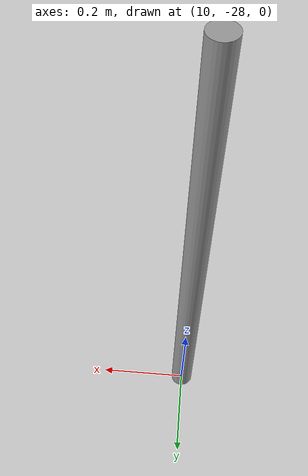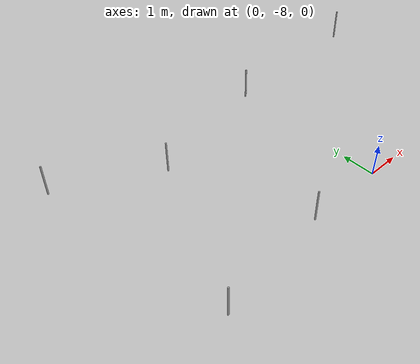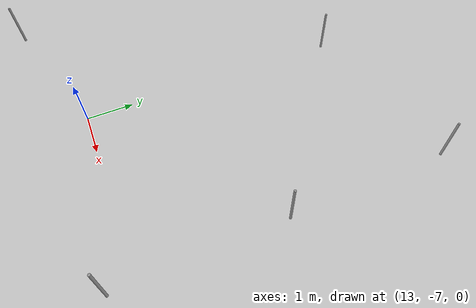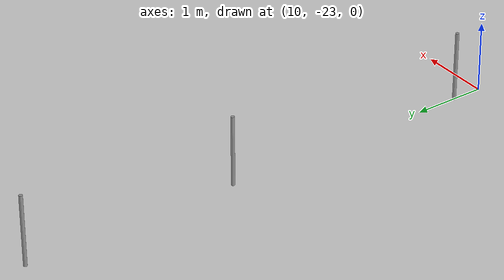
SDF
<sdf version="1.4">
 <world name="default">
  <light name="sun" type="directional">
   <pose>0 0 10 0 -0 0</pose>
   <diffuse>0.8 0.8 0.8 1</diffuse>
   <specular>0.2 0.2 0.2 1</specular>
   <attenuation>
    <range>1000</range>
    <constant>0.9</constant>
    <linear>0.01</linear>
    <quadratic>0.001</quadratic>
   </attenuation>
   <direction>-0.5 0.1 -0.9</direction>
  </light>
  <model name="ground_plane">
   <static>1</static>
   <link name="link">
    <collision name="collision">
     <geometry><plane><normal>0 0 1</normal><size>100 100</size></plane></geometry>
     <surface><friction><ode><mu>100</mu><mu2>50</mu2></ode></friction></surface>
    </collision>
    <visual name="visual">
     <cast_shadows>0</cast_shadows>
     <geometry><plane><normal>0 0 1</normal><size>100 100</size></plane></geometry>
     <material>
      <script><uri>file://media/materials/scripts/gazebo.material</uri><name>Gazebo/Grey</name></script>
     </material>
    </visual>
    <velocity_decay><linear>0</linear><angular>0</angular></velocity_decay>
   </link>
  </model>
  <physics type="ode">
   <max_step_size>0.001</max_step_size>
   <real_time_factor>1</real_time_factor>
   <real_time_update_rate>1000</real_time_update_rate>
   <gravity>0 0 -9.8</gravity>
  </physics>
  <scene><ambient>0.4 0.4 0.4 1</ambient><background>0.7 0.7 0.7 1</background><shadows>1</shadows></scene>
  <spherical_coordinates>
   <surface_model>EARTH_WGS84</surface_model>
   <latitude_deg>0</latitude_deg>
   <longitude_deg>0</longitude_deg>
   <elevation>0</elevation>
   <heading_deg>0</heading_deg>
  </spherical_coordinates>
  <model name="unit_cylinder_1">
   <pose>-6.90224 -2.49737 0.499991 -2e-06 -1.2e-05 2.8e-05</pose>
   <link name="link">
    <inertial>
     <mass>1</mass>
     <inertia><ixx>1</ixx><ixy>0</ixy><ixz>0</ixz><iyy>1</iyy><iyz>0</iyz><izz>1</izz></inertia>
    </inertial>
    <collision name="collision">
     <geometry><cylinder><radius>0.025</radius><length>1</length></cylinder></geometry>
    </collision>
    <visual name="visual">
     <geometry><cylinder><radius>0.025</radius><length>1</length></cylinder></geometry>
     <material>
      <script><uri>file://media/materials/scripts/gazebo.material</uri><name>Gazebo/Grey</name></script>
     </material>
    </visual>
    <velocity_decay><linear>0</linear><angular>0</angular></velocity_decay>
   </link>
   <static>0</static>
  </model>
  <model name="unit_cylinder_88">
   <pose>2.44618 -8.47201 0.5 -2e-06 -4e-06 1.4e-05</pose>
   <link name="link">
    <inertial>
     <mass>1</mass>
     <inertia><ixx>1</ixx><ixy>0</ixy><ixz>0</ixz><iyy>1</iyy><iyz>0</iyz><izz>1</izz></inertia>
    </inertial>
    <collision name="collision">
     <geometry><cylinder><radius>0.025</radius><length>1</length></cylinder></geometry>
    </collision>
    <visual name="visual">
     <geometry><cylinder><radius>0.025</radius><length>1</length></cylinder></geometry>
     <material>
      <script><uri>file://media/materials/scripts/gazebo.material</uri><name>Gazebo/Grey</name></script>
     </material>
    </visual>
    <velocity_decay><linear>0</linear><angular>0</angular></velocity_decay>
   </link>
   <static>0</static>
  </model>
  <model name="unit_cylinder_33">
   <pose>0.024982 -3.00002 0.49999 -2e-06 -1.6e-05 -3.3e-05</pose>
   <link name="link">
    <inertial>
     <mass>1</mass>
     <inertia><ixx>1</ixx><ixy>0</ixy><ixz>0</ixz><iyy>1</iyy><iyz>0</iyz><izz>1</izz></inertia>
    </inertial>
    <collision name="collision">
     <geometry><cylinder><radius>0.025</radius><length>1</length></cylinder></geometry>
    </collision>
    <visual name="visual">
     <geometry><cylinder><radius>0.025</radius><length>1</length></cylinder></geometry>
     <material>
      <script><uri>file://media/materials/scripts/gazebo.material</uri><name>Gazebo/Grey</name></script>
     </material>
    </visual>
    <velocity_decay><linear>0</linear><angular>0</angular></velocity_decay>
   </link>
   <static>0</static>
  </model>
  <model name="unit_cylinder_44">
   <pose>5 -2.59126 0.499991 -3e-06 -5e-06 -1e-05</pose>
   <link name="link">
    <inertial>
     <mass>1</mass>
     <inertia><ixx>1</ixx><ixy>0</ixy><ixz>0</ixz><iyy>1</iyy><iyz>0</iyz><izz>1</izz></inertia>
    </inertial>
    <collision name="collision">
     <geometry><cylinder><radius>0.025</radius><length>1</length></cylinder></geometry>
    </collision>
    <visual name="visual">
     <geometry><cylinder><radius>0.025</radius><length>1</length></cylinder></geometry>
     <material>
      <script><uri>file://media/materials/scripts/gazebo.material</uri><name>Gazebo/Grey</name></script>
     </material>
    </visual>
    <velocity_decay><linear>0</linear><angular>0</angular></velocity_decay>
   </link>
   <static>0</static>
  </model>
  <model name="unit_cylinder_66">
   <pose>-6.00001 -8.51314 0.49999 -3e-06 -1.8e-05 1.1e-05</pose>
   <link name="link">
    <inertial>
     <mass>1</mass>
     <inertia><ixx>1</ixx><ixy>0</ixy><ixz>0</ixz><iyy>1</iyy><iyz>0</iyz><izz>1</izz></inertia>
    </inertial>
    <collision name="collision">
     <geometry><cylinder><radius>0.025</radius><length>1</length></cylinder></geometry>
    </collision>
    <visual name="visual">
     <geometry><cylinder><radius>0.025</radius><length>1</length></cylinder></geometry>
     <material>
      <script><uri>file://media/materials/scripts/gazebo.material</uri><name>Gazebo/Grey</name></script>
     </material>
    </visual>
    <velocity_decay><linear>0</linear><angular>0</angular></velocity_decay>
   </link>
   <static>0</static>
  </model>
  <model name="unit_cylinder_77">
   <pose>-2.44581 -8 0.499999 -2e-06 3e-06 -1.8e-05</pose>
   <link name="link">
    <inertial>
     <mass>1</mass>
     <inertia><ixx>1</ixx><ixy>0</ixy><ixz>0</ixz><iyy>1</iyy><iyz>0</iyz><izz>1</izz></inertia>
    </inertial>
    <collision name="collision">
     <geometry><cylinder><radius>0.025</radius><length>1</length></cylinder></geometry>
    </collision>
    <visual name="visual">
     <geometry><cylinder><radius>0.025</radius><length>1</length></cylinder></geometry>
     <material>
      <script><uri>file://media/materials/scripts/gazebo.material</uri><name>Gazebo/Grey</name></script>
     </material>
    </visual>
    <velocity_decay><linear>0</linear><angular>0</angular></velocity_decay>
   </link>
   <static>0</static>
  </model>
  <model name="unit_cylinder_2">
   <pose>-4 -4 0.49999 -2e-06 -1.61559e-27 -5e-06</pose>
   <link name="link">
    <inertial>
     <mass>1</mass>
     <inertia><ixx>1</ixx><ixy>0</ixy><ixz>0</ixz><iyy>1</iyy><iyz>0</iyz><izz>1</izz></inertia>
    </inertial>
    <collision name="collision">
     <geometry><cylinder><radius>0.025</radius><length>1</length></cylinder></geometry>
    </collision>
    <visual name="visual">
     <geometry><cylinder><radius>0.025</radius><length>1</length></cylinder></geometry>
     <material>
      <script><uri>file://media/materials/scripts/gazebo.material</uri><name>Gazebo/Grey</name></script>
     </material>
    </visual>
    <velocity_decay><linear>0</linear><angular>0</angular></velocity_decay>
   </link>
   <static>0</static>
  </model>
  <model name="unit_cylinder_55">
   <pose>8.55183 -2 0.5 3e-06 -1.6e-05 -2.2e-05</pose>
   <link name="link">
    <inertial>
     <mass>1</mass>
     <inertia><ixx>1</ixx><ixy>0</ixy><ixz>0</ixz><iyy>1</iyy><iyz>0</iyz><izz>1</izz></inertia>
    </inertial>
    <collision name="collision">
     <geometry><cylinder><radius>0.025</radius><length>1</length></cylinder></geometry>
    </collision>
    <visual name="visual">
     <geometry><cylinder><radius>0.025</radius><length>1</length></cylinder></geometry>
     <material>
      <script><uri>file://media/materials/scripts/gazebo.material</uri><name>Gazebo/Grey</name></script>
     </material>
    </visual>
    <velocity_decay><linear>0</linear><angular>0</angular></velocity_decay>
   </link>
   <static>0</static>
  </model>
  <model name="unit_cylinder_99">
   <pose>6 -9 0.5 -3e-06 -2.1e-05 1.4e-05</pose>
   <link name="link">
    <inertial>
     <mass>1</mass>
     <inertia><ixx>1</ixx><ixy>0</ixy><ixz>0</ixz><iyy>1</iyy><iyz>0</iyz><izz>1</izz></inertia>
    </inertial>
    <collision name="collision">
     <geometry><cylinder><radius>0.025</radius><length>1</length></cylinder></geometry>
    </collision>
    <visual name="visual">
     <geometry><cylinder><radius>0.025</radius><length>1</length></cylinder></geometry>
     <material>
      <script><uri>file://media/materials/scripts/gazebo.material</uri><name>Gazebo/Grey</name></script>
     </material>
    </visual>
    <velocity_decay><linear>0</linear><angular>0</angular></velocity_decay>
   </link>
   <static>0</static>
  </model>
  <model name="unit_cylinder_1_0">
   <pose>13 -0.999999 0.5 -2e-06 2e-06 4e-06</pose>
   <link name="link">
    <inertial>
     <mass>1</mass>
     <inertia><ixx>1</ixx><ixy>0</ixy><ixz>0</ixz><iyy>1</iyy><iyz>0</iyz><izz>1</izz></inertia>
    </inertial>
    <collision name="collision">
     <geometry><cylinder><radius>0.025</radius><length>1</length></cylinder></geometry>
    </collision>
    <visual name="visual">
     <geometry><cylinder><radius>0.025</radius><length>1</length></cylinder></geometry>
     <material>
      <script><uri>file://media/materials/scripts/gazebo.material</uri><name>Gazebo/Grey</name></script>
     </material>
    </visual>
    <velocity_decay><linear>0</linear><angular>0</angular></velocity_decay>
   </link>
   <static>0</static>
  </model>
  <model name="unit_cylinder_2_0">
   <pose>17 -4 0.5 0 -7e-06 0</pose>
   <link name="link">
    <inertial>
     <mass>1</mass>
     <inertia><ixx>1</ixx><ixy>0</ixy><ixz>0</ixz><iyy>1</iyy><iyz>0</iyz><izz>1</izz></inertia>
    </inertial>
    <collision name="collision">
     <geometry><cylinder><radius>0.025</radius><length>1</length></cylinder></geometry>
    </collision>
    <visual name="visual">
     <geometry><cylinder><radius>0.025</radius><length>1</length></cylinder></geometry>
     <material>
      <script><uri>file://media/materials/scripts/gazebo.material</uri><name>Gazebo/Grey</name></script>
     </material>
    </visual>
    <velocity_decay><linear>0</linear><angular>0</angular></velocity_decay>
   </link>
   <static>0</static>
  </model>
  <model name="unit_cylinder_3">
   <pose>17 -10.5994 0.499999 -1e-06 -1e-06 -1.5e-05</pose>
   <link name="link">
    <inertial>
     <mass>1</mass>
     <inertia><ixx>1</ixx><ixy>0</ixy><ixz>0</ixz><iyy>1</iyy><iyz>0</iyz><izz>1</izz></inertia>
    </inertial>
    <collision name="collision">
     <geometry><cylinder><radius>0.025</radius><length>1</length></cylinder></geometry>
    </collision>
    <visual name="visual">
     <geometry><cylinder><radius>0.025</radius><length>1</length></cylinder></geometry>
     <material>
      <script><uri>file://media/materials/scripts/gazebo.material</uri><name>Gazebo/Grey</name></script>
     </material>
    </visual>
    <velocity_decay><linear>0</linear><angular>0</angular></velocity_decay>
   </link>
   <static>0</static>
  </model>
  <model name="unit_cylinder_4">
   <pose>9.99999 -13 0.5 -2e-06 -3e-06 2e-05</pose>
   <link name="link">
    <inertial>
     <mass>1</mass>
     <inertia><ixx>1</ixx><ixy>0</ixy><ixz>0</ixz><iyy>1</iyy><iyz>0</iyz><izz>1</izz></inertia>
    </inertial>
    <collision name="collision">
     <geometry><cylinder><radius>0.025</radius><length>1</length></cylinder></geometry>
    </collision>
    <visual name="visual">
     <geometry><cylinder><radius>0.025</radius><length>1</length></cylinder></geometry>
     <material>
      <script><uri>file://media/materials/scripts/gazebo.material</uri><name>Gazebo/Grey</name></script>
     </material>
    </visual>
    <velocity_decay><linear>0</linear><angular>0</angular></velocity_decay>
   </link>
   <static>0</static>
  </model>
  <model name="unit_cylinder_5">
   <pose>17 -20 0.49999 -7e-06 -2e-05 -3e-06</pose>
   <link name="link">
    <inertial>
     <mass>1</mass>
     <inertia><ixx>1</ixx><ixy>0</ixy><ixz>0</ixz><iyy>1</iyy><iyz>0</iyz><izz>1</izz></inertia>
    </inertial>
    <collision name="collision">
     <geometry><cylinder><radius>0.025</radius><length>1</length></cylinder></geometry>
    </collision>
    <visual name="visual">
     <geometry><cylinder><radius>0.025</radius><length>1</length></cylinder></geometry>
     <material>
      <script><uri>file://media/materials/scripts/gazebo.material</uri><name>Gazebo/Grey</name></script>
     </material>
    </visual>
    <velocity_decay><linear>0</linear><angular>0</angular></velocity_decay>
   </link>
   <static>0</static>
  </model>
  <model name="unit_cylinder_6">
   <pose>9.99999 -19 0.499991 1e-06 -1.8e-05 9e-06</pose>
   <link name="link">
    <inertial>
     <mass>1</mass>
     <inertia><ixx>1</ixx><ixy>0</ixy><ixz>0</ixz><iyy>1</iyy><iyz>0</iyz><izz>1</izz></inertia>
    </inertial>
    <collision name="collision">
     <geometry><cylinder><radius>0.025</radius><length>1</length></cylinder></geometry>
    </collision>
    <visual name="visual">
     <geometry><cylinder><radius>0.025</radius><length>1</length></cylinder></geometry>
     <material>
      <script><uri>file://media/materials/scripts/gazebo.material</uri><name>Gazebo/Grey</name></script>
     </material>
    </visual>
    <velocity_decay><linear>0</linear><angular>0</angular></velocity_decay>
   </link>
   <static>0</static>
  </model>
  <model name="unit_cylinder_7">
   <pose>17 -15.5846 0.499991 -5e-06 1.4e-05 1.7e-05</pose>
   <link name="link">
    <inertial>
     <mass>1</mass>
     <inertia><ixx>1</ixx><ixy>0</ixy><ixz>0</ixz><iyy>1</iyy><iyz>0</iyz><izz>1</izz></inertia>
    </inertial>
    <collision name="collision">
     <geometry><cylinder><radius>0.025</radius><length>1</length></cylinder></geometry>
    </collision>
    <visual name="visual">
     <geometry><cylinder><radius>0.025</radius><length>1</length></cylinder></geometry>
     <material>
      <script><uri>file://media/materials/scripts/gazebo.material</uri><name>Gazebo/Grey</name></script>
     </material>
    </visual>
    <velocity_decay><linear>0</linear><angular>0</angular></velocity_decay>
   </link>
   <static>0</static>
  </model>
  <model name="unit_cylinder_8">
   <pose>9.99999 -25.4798 0.499991 1e-06 -3e-06 -1e-06</pose>
   <link name="link">
    <inertial>
     <mass>1</mass>
     <inertia><ixx>1</ixx><ixy>0</ixy><ixz>0</ixz><iyy>1</iyy><iyz>0</iyz><izz>1</izz></inertia>
    </inertial>
    <collision name="collision">
     <geometry><cylinder><radius>0.025</radius><length>1</length></cylinder></geometry>
    </collision>
    <visual name="visual">
     <geometry><cylinder><radius>0.025</radius><length>1</length></cylinder></geometry>
     <material>
      <script><uri>file://media/materials/scripts/gazebo.material</uri><name>Gazebo/Grey</name></script>
     </material>
    </visual>
    <velocity_decay><linear>0</linear><angular>0</angular></velocity_decay>
   </link>
   <static>0</static>
  </model>
  <model name="unit_cylinder_9">
   <pose>17 -28 0.49999 1e-06 -1e-05 -1.2e-05</pose>
   <link name="link">
    <inertial>
     <mass>1</mass>
     <inertia><ixx>1</ixx><ixy>0</ixy><ixz>0</ixz><iyy>1</iyy><iyz>0</iyz><izz>1</izz></inertia>
    </inertial>
    <collision name="collision">
     <geometry><cylinder><radius>0.025</radius><length>1</length></cylinder></geometry>
    </collision>
    <visual name="visual">
     <geometry><cylinder><radius>0.025</radius><length>1</length></cylinder></geometry>
     <material>
      <script><uri>file://media/materials/scripts/gazebo.material</uri><name>Gazebo/Grey</name></script>
     </material>
    </visual>
    <velocity_decay><linear>0</linear><angular>0</angular></velocity_decay>
   </link>
   <static>0</static>
  </model>
  <model name="unit_cylinder_2_1">
   <pose>16 -24 0.499991 -2e-06 -2e-06 1.61559e-27</pose>
   <link name="link">
    <inertial>
     <mass>1</mass>
     <inertia><ixx>1</ixx><ixy>0</ixy><ixz>0</ixz><iyy>1</iyy><iyz>0</iyz><izz>1</izz></inertia>
    </inertial>
    <collision name="collision">
     <geometry><cylinder><radius>0.025</radius><length>1</length></cylinder></geometry>
    </collision>
    <visual name="visual">
     <geometry><cylinder><radius>0.025</radius><length>1</length></cylinder></geometry>
     <material>
      <script><uri>file://media/materials/scripts/gazebo.material</uri><name>Gazebo/Grey</name></script>
     </material>
    </visual>
    <velocity_decay><linear>0</linear><angular>0</angular></velocity_decay>
   </link>
   <static>0</static>
  </model>
  <model name="unit_cylinder_3_0">
   <pose>9.99999 -22.5801 0.499991 -5e-06 -1.5e-05 -1.6e-05</pose>
   <link name="link">
    <inertial>
     <mass>1</mass>
     <inertia><ixx>1</ixx><ixy>0</ixy><ixz>0</ixz><iyy>1</iyy><iyz>0</iyz><izz>1</izz></inertia>
    </inertial>
    <collision name="collision">
     <geometry><cylinder><radius>0.025</radius><length>1</length></cylinder></geometry>
    </collision>
    <visual name="visual">
     <geometry><cylinder><radius>0.025</radius><length>1</length></cylinder></geometry>
     <material>
      <script><uri>file://media/materials/scripts/gazebo.material</uri><name>Gazebo/Grey</name></script>
     </material>
    </visual>
    <velocity_decay><linear>0</linear><angular>0</angular></velocity_decay>
   </link>
   <static>0</static>
  </model>
  <model name="unit_cylinder_1_1">
   <pose>9.58616 -8 0.499991 6.46235e-27 -7e-06 6e-06</pose>
   <link name="link">
    <inertial>
     <mass>1</mass>
     <inertia><ixx>1</ixx><ixy>0</ixy><ixz>0</ixz><iyy>1</iyy><iyz>0</iyz><izz>1</izz></inertia>
    </inertial>
    <collision name="collision">
     <geometry><cylinder><radius>0.025</radius><length>1</length></cylinder></geometry>
    </collision>
    <visual name="visual">
     <geometry><cylinder><radius>0.025</radius><length>1</length></cylinder></geometry>
     <material>
      <script><uri>file://media/materials/scripts/gazebo.material</uri><name>Gazebo/Grey</name></script>
     </material>
    </visual>
    <velocity_decay><linear>0</linear><angular>0</angular></velocity_decay>
   </link>
   <static>0</static>
  </model>
  <model name="unit_cylinder_2_2">
   <pose>17 -0.466026 0.5 -2e-06 2e-06 -3e-06</pose>
   <link name="link">
    <inertial>
     <mass>1</mass>
     <inertia><ixx>1</ixx><ixy>0</ixy><ixz>0</ixz><iyy>1</iyy><iyz>0</iyz><izz>1</izz></inertia>
    </inertial>
    <collision name="collision">
     <geometry><cylinder><radius>0.025</radius><length>1</length></cylinder></geometry>
    </collision>
    <visual name="visual">
     <geometry><cylinder><radius>0.025</radius><length>1</length></cylinder></geometry>
     <material>
      <script><uri>file://media/materials/scripts/gazebo.material</uri><name>Gazebo/Grey</name></script>
     </material>
    </visual>
    <velocity_decay><linear>0</linear><angular>0</angular></velocity_decay>
   </link>
   <static>0</static>
  </model>
  <model name="unit_cylinder_3_1">
   <pose>10 -28 0.499991 -1e-06 2e-06 -5e-06</pose>
   <link name="link">
    <inertial>
     <mass>1</mass>
     <inertia><ixx>1</ixx><ixy>0</ixy><ixz>0</ixz><iyy>1</iyy><iyz>0</iyz><izz>1</izz></inertia>
    </inertial>
    <collision name="collision">
     <geometry><cylinder><radius>0.025</radius><length>1</length></cylinder></geometry>
    </collision>
    <visual name="visual">
     <geometry><cylinder><radius>0.025</radius><length>1</length></cylinder></geometry>
     <material>
      <script><uri>file://media/materials/scripts/gazebo.material</uri><name>Gazebo/Grey</name></script>
     </material>
    </visual>
    <velocity_decay><linear>0</linear><angular>0</angular></velocity_decay>
   </link>
   <static>0</static>
  </model>
  <model name="unit_cylinder_1_2">
   <pose>17 -7.41816 0.499998 0 -0 0</pose>
   <link name="link">
    <inertial>
     <mass>1</mass>
     <inertia><ixx>1</ixx><ixy>0</ixy><ixz>0</ixz><iyy>1</iyy><iyz>0</iyz><izz>1</izz></inertia>
    </inertial>
    <collision name="collision">
     <geometry><cylinder><radius>0.025</radius><length>1</length></cylinder></geometry>
    </collision>
    <visual name="visual">
     <geometry><cylinder><radius>0.025</radius><length>1</length></cylinder></geometry>
     <material>
      <script><uri>file://media/materials/scripts/gazebo.material</uri><name>Gazebo/Grey</name></script>
     </material>
    </visual>
    <velocity_decay><linear>0</linear><angular>0</angular></velocity_decay>
   </link>
   <static>0</static>
  </model>
  <model name="unit_cylinder_2_3">
   <pose>10 -16 0.499992 0 -0 0</pose>
   <link name="link">
    <inertial>
     <mass>1</mass>
     <inertia><ixx>1</ixx><ixy>0</ixy><ixz>0</ixz><iyy>1</iyy><iyz>0</iyz><izz>1</izz></inertia>
    </inertial>
    <collision name="collision">
     <geometry><cylinder><radius>0.025</radius><length>1</length></cylinder></geometry>
    </collision>
    <visual name="visual">
     <geometry><cylinder><radius>0.025</radius><length>1</length></cylinder></geometry>
     <material>
      <script><uri>file://media/materials/scripts/gazebo.material</uri><name>Gazebo/Grey</name></script>
     </material>
    </visual>
    <velocity_decay><linear>0</linear><angular>0</angular></velocity_decay>
   </link>
   <static>0</static>
  </model>
 </world>
</sdf>
